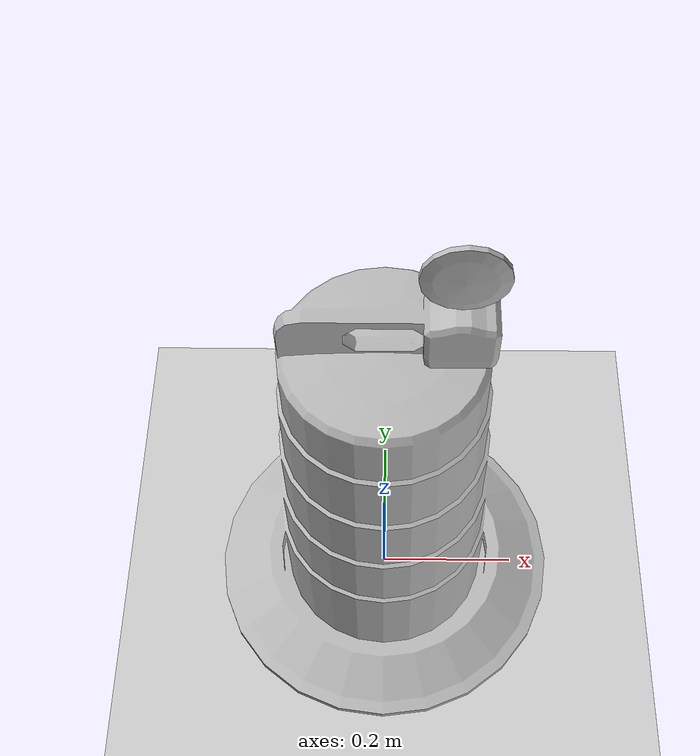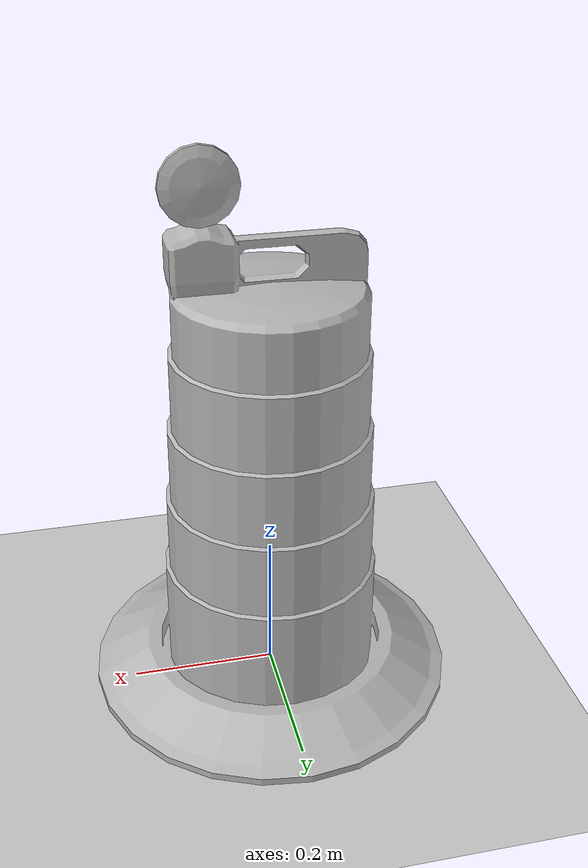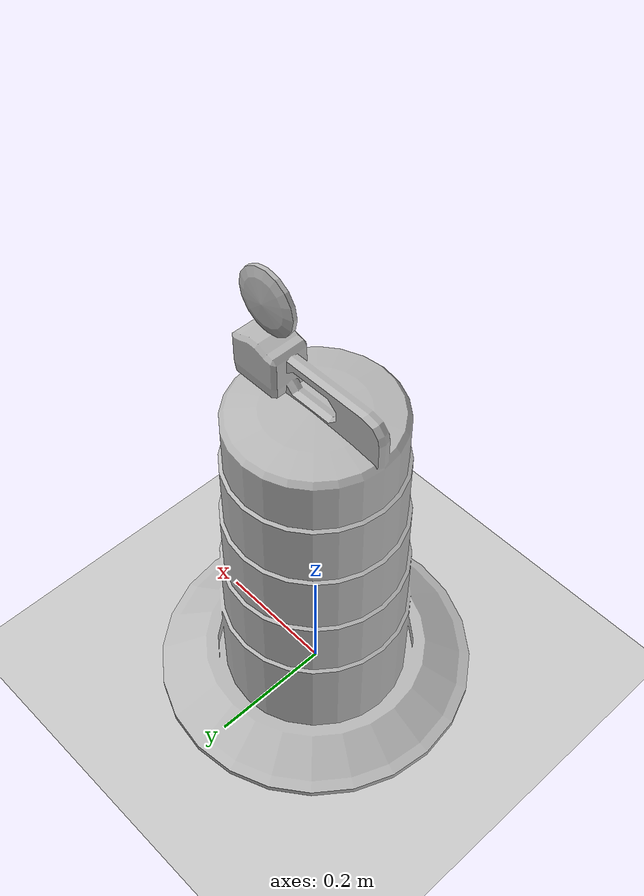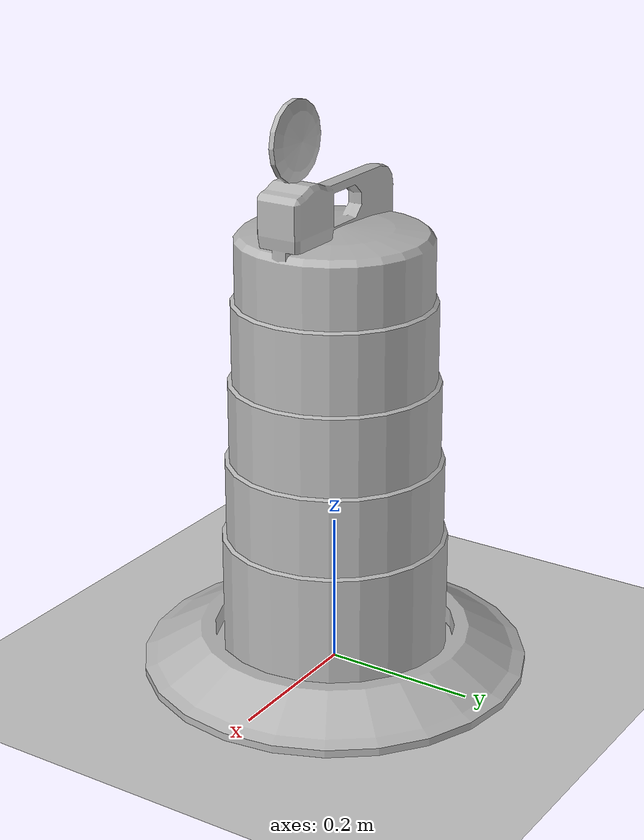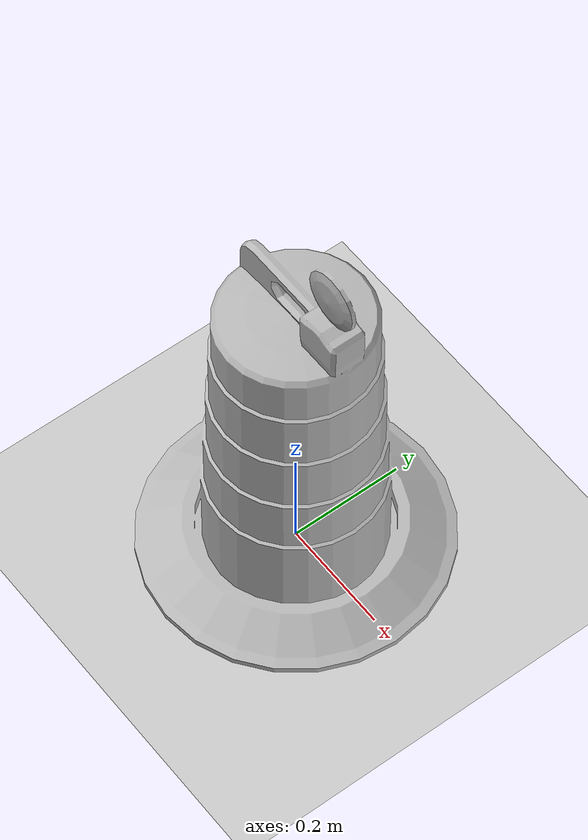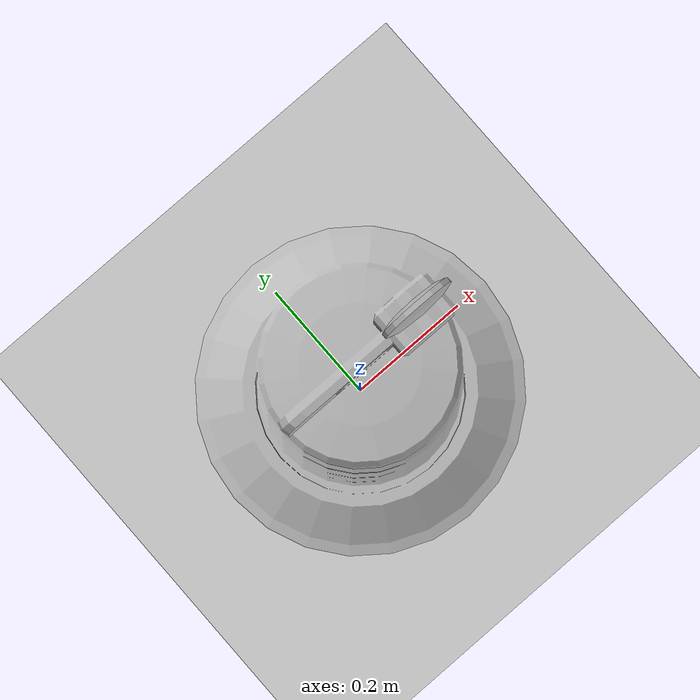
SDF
<?xml version="1.0" ?>
<sdf version="1.5">
  <world name="default">

    <!-- A global light source -->
    <include>
      <uri>model://sun</uri>
    </include>

    <!-- A ground plane -->
    <include>
      <uri>model://ground_plane</uri>
    </include>

    <!-- A construction_barrel-->
    <include>
      <static>true</static>
        <pose>0 0 0 0 0 0</pose>
      <uri>model://construction_barrel</uri>
    </include>

  </world>
</sdf>

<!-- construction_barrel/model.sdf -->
<sdf version="1.5">
  <model name="Construction Barrel">
    <link name="link">
      <inertial>
        <pose>0 0 0.4 0 0 0</pose>
        <mass>500</mass>
        <inertia>
          <ixx>51.2096</ixx>
          <iyy>51.2096</iyy>
          <izz>25</izz>
          <ixy>0</ixy>
          <ixz>0</ixz>
        </inertia>
      </inertial>
      <collision name="collision">
        <geometry>
          <mesh>
            <uri>model://construction_barrel/meshes/construction_barrel.dae</uri>
              <scale>0.5 0.5 0.5</scale>
          </mesh>
        </geometry>
      </collision>
      <visual name="visual">
        <geometry>
          <mesh>
            <uri>model://construction_barrel/meshes/construction_barrel.dae</uri>
              <scale>0.5 0.5 0.5</scale>
          </mesh>
        </geometry>
      </visual>
    </link>
  </model>
</sdf>
